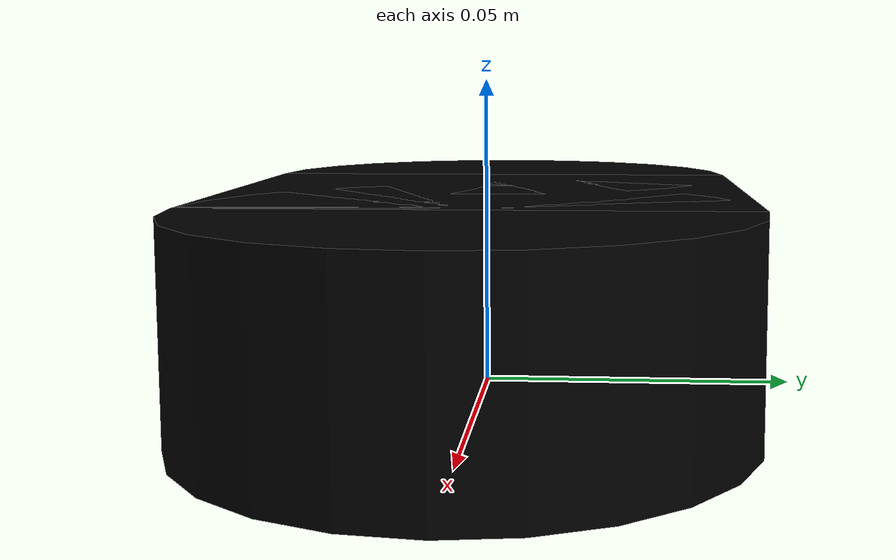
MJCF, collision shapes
<mujoco model="herring_tin">
  <compiler angle="radian"/>

  <asset>
    <texture name="herring_tin_tex" type="2d" file="herring_tin_texture.png"/>
    <material name="herring_tin_mat" texture="herring_tin_tex" specular="0.5" shininess="0.5"/>
    <mesh name="herring_tin_visual" file="herring_tin_visual.obj"/>
  </asset>

  <worldbody>
    <body name="herring_tin" pos="0 0 0.016">
      <freejoint name="herring_tin_joint"/>

      <!-- Collision geometry - flat tin with rounded ends -->
      <!-- Central box -->
      <geom name="herring_tin_collision_box"
            type="box"
            size="0.033 0.042 0.016"
            mass="0.12"
            friction="0.6 0.005 0.0001"
            contype="1"
            conaffinity="1"
            rgba="0 0 0 0"/>
      <!-- Rounded end +X -->
      <geom name="herring_tin_collision_end1"
            type="cylinder"
            size="0.042 0.016"
            pos="0.033 0 0"
            mass="0.04"
            friction="0.6 0.005 0.0001"
            contype="1"
            conaffinity="1"
            rgba="0 0 0 0"/>
      <!-- Rounded end -X -->
      <geom name="herring_tin_collision_end2"
            type="cylinder"
            size="0.042 0.016"
            pos="-0.033 0 0"
            mass="0.04"
            friction="0.6 0.005 0.0001"
            contype="1"
            conaffinity="1"
            rgba="0 0 0 0"/>

      <!-- Visual mesh -->
      <geom name="herring_tin_visual"
            type="mesh"
            mesh="herring_tin_visual"
            material="herring_tin_mat"
            contype="0"
            conaffinity="0"/>
    </body>
  </worldbody>
</mujoco>
